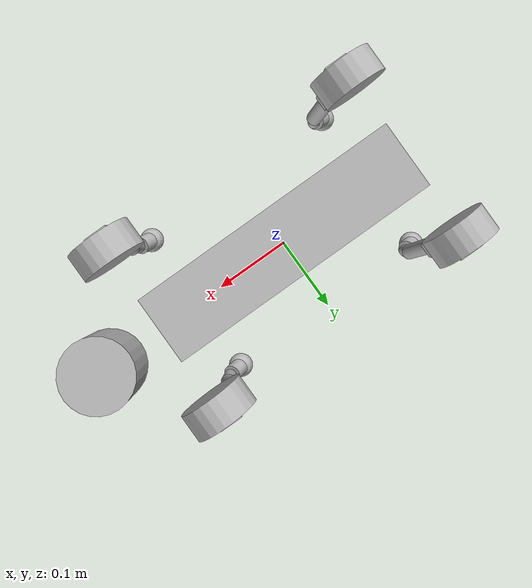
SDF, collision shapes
<sdf version='1.7'>
  <model name='go2_description'>
    <link name='base'>
      <inertial>
        <pose>0.021189 0 -0.005372 0 -0 0</pose>
        <mass>6.923</mass>
        <inertia>
          <ixx>0.0245024</ixx>
          <ixy>0.00012166</ixy>
          <ixz>0.0014957</ixz>
          <iyy>0.0982429</iyy>
          <iyz>-3.12e-05</iyz>
          <izz>0.107163</izz>
        </inertia>
      </inertial>
      <collision name='base_fixed_joint_lump__trunk_collision'>
        <pose>0 0 0 0 -0 0</pose>
        <geometry>
          <box>
            <size>0.3762 0.0935 0.114</size>
          </box>
        </geometry>
        <surface>
          <contact>
            <ode>
              <kp>1e+06</kp>
              <kd>1</kd>
            </ode>
          </contact>
          <friction>
            <ode>
              <mu>0.2</mu>
              <mu2>0.2</mu2>
            </ode>
          </friction>
        </surface>
      </collision>
      <collision name='base_fixed_joint_lump__Head_upper_collision_1'>
        <pose>0.285 0 0.01 0 -0 0</pose>
        <geometry>
          <cylinder>
            <length>0.09</length>
            <radius>0.05</radius>
          </cylinder>
        </geometry>
      </collision>
      <collision name='base_fixed_joint_lump__Head_lower_collision_2'>
        <pose>0.293 0 -0.06 0 -0 0</pose>
        <geometry>
          <sphere>
            <radius>0.047</radius>
          </sphere>
        </geometry>
      </collision>
      <visual name='base_visual'>
        <pose>0 0 0 0 -0 0</pose>
        <geometry>
          <box>
            <size>0.001 0.001 0.001</size>
          </box>
        </geometry>
      </visual>
      <visual name='base_fixed_joint_lump__trunk_visual_1'>
        <pose>0 0 0 0 -0 0</pose>
        <geometry>
          <mesh>
            <scale>1 1 1</scale>
            <uri>model://go2_description/meshes/base.dae</uri>
          </mesh>
        </geometry>
      </visual>
      <gravity>1</gravity>
      <sensor name='imu_sensor' type='imu'>
        <plugin name='imu_plugin' filename='libgazebo_ros_imu_sensor.so'>
          <ros>
            <namespace>/</namespace>
            <remapping>~/out:=imu</remapping>
          </ros>
          <initial_orientation_as_reference>0</initial_orientation_as_reference>
        </plugin>
        <always_on>1</always_on>
        <update_rate>100</update_rate>
        <visualize>1</visualize>
        <imu>
          <angular_velocity>
            <x>
              <noise type='gaussian'>
                <mean>0</mean>
                <stddev>0.0002</stddev>
                <bias_mean>7.5e-06</bias_mean>
                <bias_stddev>8e-07</bias_stddev>
              </noise>
            </x>
            <y>
              <noise type='gaussian'>
                <mean>0</mean>
                <stddev>0.0002</stddev>
                <bias_mean>7.5e-06</bias_mean>
                <bias_stddev>8e-07</bias_stddev>
              </noise>
            </y>
            <z>
              <noise type='gaussian'>
                <mean>0</mean>
                <stddev>0.0002</stddev>
                <bias_mean>7.5e-06</bias_mean>
                <bias_stddev>8e-07</bias_stddev>
              </noise>
            </z>
          </angular_velocity>
          <linear_acceleration>
            <x>
              <noise type='gaussian'>
                <mean>0</mean>
                <stddev>0.017</stddev>
                <bias_mean>0.1</bias_mean>
                <bias_stddev>0.001</bias_stddev>
              </noise>
            </x>
            <y>
              <noise type='gaussian'>
                <mean>0</mean>
                <stddev>0.017</stddev>
                <bias_mean>0.1</bias_mean>
                <bias_stddev>0.001</bias_stddev>
              </noise>
            </y>
            <z>
              <noise type='gaussian'>
                <mean>0</mean>
                <stddev>0.017</stddev>
                <bias_mean>0.1</bias_mean>
                <bias_stddev>0.001</bias_stddev>
              </noise>
            </z>
          </linear_acceleration>
        </imu>
        <pose>-0.02557 0 0.04232 0 -0 0</pose>
      </sensor>
    </link>
    <joint name='FL_hip_joint' type='revolute'>
      <pose relative_to='base'>0.1934 0.0465 0 0 -0 0</pose>
      <parent>base</parent>
      <child>FL_hip</child>
      <axis>
        <xyz>1 0 0</xyz>
        <limit>
          <lower>-1.0472</lower>
          <upper>1.0472</upper>
          <effort>23.7</effort>
          <velocity>30.1</velocity>
        </limit>
        <dynamics>
          <spring_reference>0</spring_reference>
          <spring_stiffness>0</spring_stiffness>
        </dynamics>
      </axis>
    </joint>
    <link name='FL_hip'>
      <pose relative_to='FL_hip_joint'>0 0 0 0 -0 0</pose>
      <inertial>
        <pose>-0.0054 0.00194 -0.000105 0 -0 0</pose>
        <mass>0.678</mass>
        <inertia>
          <ixx>0.00048</ixx>
          <ixy>-3.01e-06</ixy>
          <ixz>1.11e-06</ixz>
          <iyy>0.000884</iyy>
          <iyz>-1.42e-06</iyz>
          <izz>0.000596</izz>
        </inertia>
      </inertial>
      <collision name='FL_hip_collision'>
        <pose>0 0.08 0 1.5708 -0 0</pose>
        <geometry>
          <cylinder>
            <length>0.04</length>
            <radius>0.046</radius>
          </cylinder>
        </geometry>
        <surface>
          <contact>
            <ode/>
          </contact>
          <friction>
            <ode>
              <mu>0.2</mu>
              <mu2>0.2</mu2>
            </ode>
          </friction>
        </surface>
      </collision>
      <visual name='FL_hip_visual'>
        <pose>0 0 0 0 -0 0</pose>
        <geometry>
          <mesh>
            <scale>1 1 1</scale>
            <uri>model://go2_description/meshes/hip.dae</uri>
          </mesh>
        </geometry>
      </visual>
    </link>
    <joint name='FL_thigh_joint' type='revolute'>
      <pose relative_to='FL_hip'>0 0.0955 0 0 -0 0</pose>
      <parent>FL_hip</parent>
      <child>FL_thigh</child>
      <axis>
        <xyz>0 1 0</xyz>
        <limit>
          <lower>-1.5708</lower>
          <upper>3.4907</upper>
          <effort>23.7</effort>
          <velocity>30.1</velocity>
        </limit>
        <dynamics>
          <spring_reference>0</spring_reference>
          <spring_stiffness>0</spring_stiffness>
        </dynamics>
      </axis>
    </joint>
    <link name='FL_thigh'>
      <pose relative_to='FL_thigh_joint'>0 0 0 0 -0 0</pose>
      <inertial>
        <pose>-0.00374 -0.0223 -0.0327 0 -0 0</pose>
        <mass>1.152</mass>
        <inertia>
          <ixx>0.00584</ixx>
          <ixy>8.72e-05</ixy>
          <ixz>-0.000289</ixz>
          <iyy>0.0058</iyy>
          <iyz>0.000808</iyz>
          <izz>0.00103</izz>
        </inertia>
      </inertial>
      <collision name='FL_thigh_collision'>
        <pose>0 0 -0.1065 0 1.5708 0</pose>
        <geometry>
          <box>
            <size>0.213 0.0245 0.034</size>
          </box>
        </geometry>
        <surface>
          <contact>
            <ode>
              <kp>1e+06</kp>
              <kd>1</kd>
            </ode>
          </contact>
          <friction>
            <ode>
              <mu>0.2</mu>
              <mu2>0.2</mu2>
            </ode>
          </friction>
        </surface>
      </collision>
      <visual name='FL_thigh_visual'>
        <pose>0 0 0 0 -0 0</pose>
        <geometry>
          <mesh>
            <scale>1 1 1</scale>
            <uri>model://go2_description/meshes/thigh.dae</uri>
          </mesh>
        </geometry>
      </visual>
      <self_collide>1</self_collide>
    </link>
    <joint name='FL_calf_joint' type='revolute'>
      <pose relative_to='FL_thigh'>0 0 -0.213 0 -0 0</pose>
      <parent>FL_thigh</parent>
      <child>FL_calf</child>
      <axis>
        <xyz>0 1 0</xyz>
        <limit>
          <lower>-2.7227</lower>
          <upper>-0.83776</upper>
          <effort>45.43</effort>
          <velocity>15.7</velocity>
        </limit>
        <dynamics>
          <spring_reference>0</spring_reference>
          <spring_stiffness>0</spring_stiffness>
        </dynamics>
      </axis>
    </joint>
    <link name='FL_calf'>
      <pose relative_to='FL_calf_joint'>0 0 0 0 -0 0</pose>
      <inertial>
        <pose>0.00435 -0.000774 -0.135206 0 -0 0</pose>
        <mass>0.194</mass>
        <inertia>
          <ixx>0.00139458</ixx>
          <ixy>5.09654e-07</ixy>
          <ixz>1.47596e-07</ixz>
          <iyy>0.00141551</iyy>
          <iyz>1.1314e-05</iyz>
          <izz>4.34837e-05</izz>
        </inertia>
      </inertial>
      <collision name='FL_calf_collision'>
        <pose>0.008 0 -0.06 0 -0.21 0</pose>
        <geometry>
          <cylinder>
            <length>0.12</length>
            <radius>0.012</radius>
          </cylinder>
        </geometry>
        <surface>
          <contact>
            <ode/>
          </contact>
          <friction>
            <ode>
              <mu>0.2</mu>
              <mu2>0.2</mu2>
            </ode>
          </friction>
        </surface>
      </collision>
      <collision name='FL_calflower_collision_1'>
        <pose>0.02 0 -0.148 0 0.05 0</pose>
        <geometry>
          <cylinder>
            <length>0.065</length>
            <radius>0.011</radius>
          </cylinder>
        </geometry>
        <surface>
          <contact>
            <ode/>
          </contact>
          <friction>
            <ode>
              <mu>0.2</mu>
              <mu2>0.2</mu2>
            </ode>
          </friction>
        </surface>
      </collision>
      <collision name='FL_calflower1_collision_2'>
        <pose>0.008013 0 -0.18745 0 0.53 0</pose>
        <geometry>
          <cylinder>
            <length>0.03</length>
            <radius>0.0155</radius>
          </cylinder>
        </geometry>
        <surface>
          <contact>
            <ode/>
          </contact>
          <friction>
            <ode>
              <mu>0.2</mu>
              <mu2>0.2</mu2>
            </ode>
          </friction>
        </surface>
      </collision>
      <collision name='FL_calf_fixed_joint_lump__FL_foot_collision_3'>
        <pose>-0.002 0 -0.213 0 -0 0</pose>
        <geometry>
          <sphere>
            <radius>0.022</radius>
          </sphere>
        </geometry>
        <surface>
          <contact>
            <ode>
              <kp>1e+06</kp>
              <kd>1</kd>
            </ode>
          </contact>
          <friction>
            <ode>
              <mu>0.6</mu>
              <mu2>0.6</mu2>
            </ode>
          </friction>
        </surface>
      </collision>
      <visual name='FL_calf_visual'>
        <pose>0 0 0 0 -0 0</pose>
        <geometry>
          <mesh>
            <scale>1 1 1</scale>
            <uri>model://go2_description/meshes/calf.dae</uri>
          </mesh>
        </geometry>
      </visual>
      <visual name='FL_calf_fixed_joint_lump__FL_foot_visual_1'>
        <pose>0 0 -0.213 0 -0 0</pose>
        <geometry>
          <mesh>
            <scale>1 1 1</scale>
            <uri>model://go2_description/meshes/foot.dae</uri>
          </mesh>
        </geometry>
      </visual>
      <self_collide>1</self_collide>
      <sensor name='FL_foot_contact' type='contact'>
        <update_rate>100</update_rate>
        <plugin name='FLcontactPlugin' filename='libgazebo_ros_bumper.so'>
          <ros>
            <namespace>/</namespace>
            <node_name>FL_foot_contact_node</node_name>
            <remapping>~/contacts:=FL_foot_contact</remapping>
          </ros>
          <always_on>1</always_on>
        </plugin>
        <contact>
          <collision>FL_calf_fixed_joint_lump__FL_foot_collision_1</collision>
          <topic>__default_topic__</topic>
        </contact>
        <pose>0 0 -0.213 0 -0 0</pose>
      </sensor>
      <self_collide>1</self_collide>
    </link>
    <joint name='FR_hip_joint' type='revolute'>
      <pose relative_to='base'>0.1934 -0.0465 0 0 -0 0</pose>
      <parent>base</parent>
      <child>FR_hip</child>
      <axis>
        <xyz>1 0 0</xyz>
        <limit>
          <lower>-1.0472</lower>
          <upper>1.0472</upper>
          <effort>23.7</effort>
          <velocity>30.1</velocity>
        </limit>
        <dynamics>
          <spring_reference>0</spring_reference>
          <spring_stiffness>0</spring_stiffness>
        </dynamics>
      </axis>
    </joint>
    <link name='FR_hip'>
      <pose relative_to='FR_hip_joint'>0 0 0 0 -0 0</pose>
      <inertial>
        <pose>-0.0054 -0.00194 -0.000105 0 -0 0</pose>
        <mass>0.678</mass>
        <inertia>
          <ixx>0.00048</ixx>
          <ixy>3.01e-06</ixy>
          <ixz>1.11e-06</ixz>
          <iyy>0.000884</iyy>
          <iyz>1.42e-06</iyz>
          <izz>0.000596</izz>
        </inertia>
      </inertial>
      <collision name='FR_hip_collision'>
        <pose>0 -0.08 0 1.5708 -0 0</pose>
        <geometry>
          <cylinder>
            <length>0.04</length>
            <radius>0.046</radius>
          </cylinder>
        </geometry>
        <surface>
          <contact>
            <ode/>
          </contact>
          <friction>
            <ode>
              <mu>0.2</mu>
              <mu2>0.2</mu2>
            </ode>
          </friction>
        </surface>
      </collision>
      <visual name='FR_hip_visual'>
        <pose>0 0 0 3.1415 -0 0</pose>
        <geometry>
          <mesh>
            <scale>1 1 1</scale>
            <uri>model://go2_description/meshes/hip.dae</uri>
          </mesh>
        </geometry>
      </visual>
    </link>
    <joint name='FR_thigh_joint' type='revolute'>
      <pose relative_to='FR_hip'>0 -0.0955 0 0 -0 0</pose>
      <parent>FR_hip</parent>
      <child>FR_thigh</child>
      <axis>
        <xyz>0 1 0</xyz>
        <limit>
          <lower>-1.5708</lower>
          <upper>3.4907</upper>
          <effort>23.7</effort>
          <velocity>30.1</velocity>
        </limit>
        <dynamics>
          <spring_reference>0</spring_reference>
          <spring_stiffness>0</spring_stiffness>
        </dynamics>
      </axis>
    </joint>
    <link name='FR_thigh'>
      <pose relative_to='FR_thigh_joint'>0 0 0 0 -0 0</pose>
      <inertial>
        <pose>-0.00374 0.0223 -0.0327 0 -0 0</pose>
        <mass>1.152</mass>
        <inertia>
          <ixx>0.00584</ixx>
          <ixy>-8.72e-05</ixy>
          <ixz>-0.000289</ixz>
          <iyy>0.0058</iyy>
          <iyz>-0.000808</iyz>
          <izz>0.00103</izz>
        </inertia>
      </inertial>
      <collision name='FR_thigh_collision'>
        <pose>0 0 -0.1065 0 1.5708 0</pose>
        <geometry>
          <box>
            <size>0.213 0.0245 0.034</size>
          </box>
        </geometry>
        <surface>
          <contact>
            <ode>
              <kp>1e+06</kp>
              <kd>1</kd>
            </ode>
          </contact>
          <friction>
            <ode>
              <mu>0.2</mu>
              <mu2>0.2</mu2>
            </ode>
          </friction>
        </surface>
      </collision>
      <visual name='FR_thigh_visual'>
        <pose>0 0 0 0 -0 0</pose>
        <geometry>
          <mesh>
            <scale>1 1 1</scale>
            <uri>model://go2_description/meshes/thigh_mirror.dae</uri>
          </mesh>
        </geometry>
      </visual>
      <self_collide>1</self_collide>
    </link>
    <joint name='FR_calf_joint' type='revolute'>
      <pose relative_to='FR_thigh'>0 0 -0.213 0 -0 0</pose>
      <parent>FR_thigh</parent>
      <child>FR_calf</child>
      <axis>
        <xyz>0 1 0</xyz>
        <limit>
          <lower>-2.7227</lower>
          <upper>-0.83776</upper>
          <effort>45.43</effort>
          <velocity>15.7</velocity>
        </limit>
        <dynamics>
          <spring_reference>0</spring_reference>
          <spring_stiffness>0</spring_stiffness>
        </dynamics>
      </axis>
    </joint>
    <link name='FR_calf'>
      <pose relative_to='FR_calf_joint'>0 0 0 0 -0 0</pose>
      <inertial>
        <pose>0.00435 0.000774 -0.135206 0 -0 0</pose>
        <mass>0.194</mass>
        <inertia>
          <ixx>0.00139458</ixx>
          <ixy>-5.09654e-07</ixy>
          <ixz>1.47596e-07</ixz>
          <iyy>0.00141551</iyy>
          <iyz>-1.1314e-05</iyz>
          <izz>4.34837e-05</izz>
        </inertia>
      </inertial>
      <collision name='FR_calf_collision'>
        <pose>0.01 0 -0.06 0 -0.2 0</pose>
        <geometry>
          <cylinder>
            <length>0.12</length>
            <radius>0.013</radius>
          </cylinder>
        </geometry>
        <surface>
          <contact>
            <ode/>
          </contact>
          <friction>
            <ode>
              <mu>0.2</mu>
              <mu2>0.2</mu2>
            </ode>
          </friction>
        </surface>
      </collision>
      <collision name='FR_calflower_collision_1'>
        <pose>0.02 0 -0.148 0 0.05 0</pose>
        <geometry>
          <cylinder>
            <length>0.065</length>
            <radius>0.011</radius>
          </cylinder>
        </geometry>
        <surface>
          <contact>
            <ode/>
          </contact>
          <friction>
            <ode>
              <mu>0.2</mu>
              <mu2>0.2</mu2>
            </ode>
          </friction>
        </surface>
      </collision>
      <collision name='FR_calflower1_collision_2'>
        <pose>0.008013 0 -0.18745 0 0.53 0</pose>
        <geometry>
          <cylinder>
            <length>0.03</length>
            <radius>0.0155</radius>
          </cylinder>
        </geometry>
        <surface>
          <contact>
            <ode/>
          </contact>
          <friction>
            <ode>
              <mu>0.2</mu>
              <mu2>0.2</mu2>
            </ode>
          </friction>
        </surface>
      </collision>
      <collision name='FR_calf_fixed_joint_lump__FR_foot_collision_3'>
        <pose>-0.002 0 -0.213 0 -0 0</pose>
        <geometry>
          <sphere>
            <radius>0.022</radius>
          </sphere>
        </geometry>
        <surface>
          <contact>
            <ode>
              <kp>1e+06</kp>
              <kd>1</kd>
            </ode>
          </contact>
          <friction>
            <ode>
              <mu>0.6</mu>
              <mu2>0.6</mu2>
            </ode>
          </friction>
        </surface>
      </collision>
      <visual name='FR_calf_visual'>
        <pose>0 0 0 0 -0 0</pose>
        <geometry>
          <mesh>
            <scale>1 1 1</scale>
            <uri>model://go2_description/meshes/calf_mirror.dae</uri>
          </mesh>
        </geometry>
      </visual>
      <visual name='FR_calf_fixed_joint_lump__FR_foot_visual_1'>
        <pose>0 0 -0.213 0 -0 0</pose>
        <geometry>
          <mesh>
            <scale>1 1 1</scale>
            <uri>model://go2_description/meshes/foot.dae</uri>
          </mesh>
        </geometry>
      </visual>
      <self_collide>1</self_collide>
      <sensor name='FR_foot_contact' type='contact'>
        <update_rate>100</update_rate>
        <plugin name='FRcontactPlugin' filename='libgazebo_ros_bumper.so'>
          <ros>
            <namespace>/</namespace>
            <node_name>FR_foot_contact_node</node_name>
            <remapping>~/contacts:=FR_foot_contact</remapping>
          </ros>
          <always_on>1</always_on>
        </plugin>
        <contact>
          <collision>FR_calf_fixed_joint_lump__FR_foot_collision_1</collision>
          <topic>__default_topic__</topic>
        </contact>
        <pose>0 0 -0.213 0 -0 0</pose>
      </sensor>
      <self_collide>1</self_collide>
    </link>
    <joint name='RL_hip_joint' type='revolute'>
      <pose relative_to='base'>-0.1934 0.0465 0 0 -0 0</pose>
      <parent>base</parent>
      <child>RL_hip</child>
      <axis>
        <xyz>1 0 0</xyz>
        <limit>
          <lower>-1.0472</lower>
          <upper>1.0472</upper>
          <effort>23.7</effort>
          <velocity>30.1</velocity>
        </limit>
        <dynamics>
          <spring_reference>0</spring_reference>
          <spring_stiffness>0</spring_stiffness>
        </dynamics>
      </axis>
    </joint>
    <link name='RL_hip'>
      <pose relative_to='RL_hip_joint'>0 0 0 0 -0 0</pose>
      <inertial>
        <pose>0.0054 0.00194 -0.000105 0 -0 0</pose>
        <mass>0.678</mass>
        <inertia>
          <ixx>0.00048</ixx>
          <ixy>3.01e-06</ixy>
          <ixz>-1.11e-06</ixz>
          <iyy>0.000884</iyy>
          <iyz>-1.42e-06</iyz>
          <izz>0.000596</izz>
        </inertia>
      </inertial>
      <collision name='RL_hip_collision'>
        <pose>0 0.08 0 1.5708 -0 0</pose>
        <geometry>
          <cylinder>
            <length>0.04</length>
            <radius>0.046</radius>
          </cylinder>
        </geometry>
        <surface>
          <contact>
            <ode/>
          </contact>
          <friction>
            <ode>
              <mu>0.2</mu>
              <mu2>0.2</mu2>
            </ode>
          </friction>
        </surface>
      </collision>
      <visual name='RL_hip_visual'>
        <pose>0 0 0 3.14159 9.3e-05 3.14159</pose>
        <geometry>
          <mesh>
            <scale>1 1 1</scale>
            <uri>model://go2_description/meshes/hip.dae</uri>
          </mesh>
        </geometry>
      </visual>
    </link>
    <joint name='RL_thigh_joint' type='revolute'>
      <pose relative_to='RL_hip'>0 0.0955 0 0 -0 0</pose>
      <parent>RL_hip</parent>
      <child>RL_thigh</child>
      <axis>
        <xyz>0 1 0</xyz>
        <limit>
          <lower>-0.5236</lower>
          <upper>4.5379</upper>
          <effort>23.7</effort>
          <velocity>30.1</velocity>
        </limit>
        <dynamics>
          <spring_reference>0</spring_reference>
          <spring_stiffness>0</spring_stiffness>
        </dynamics>
      </axis>
    </joint>
    <link name='RL_thigh'>
      <pose relative_to='RL_thigh_joint'>0 0 0 0 -0 0</pose>
      <inertial>
        <pose>-0.00374 -0.0223 -0.0327 0 -0 0</pose>
        <mass>1.152</mass>
        <inertia>
          <ixx>0.00584</ixx>
          <ixy>8.72e-05</ixy>
          <ixz>-0.000289</ixz>
          <iyy>0.0058</iyy>
          <iyz>0.000808</iyz>
          <izz>0.00103</izz>
        </inertia>
      </inertial>
      <collision name='RL_thigh_collision'>
        <pose>0 0 -0.1065 0 1.5708 0</pose>
        <geometry>
          <box>
            <size>0.213 0.0245 0.034</size>
          </box>
        </geometry>
        <surface>
          <contact>
            <ode>
              <kp>1e+06</kp>
              <kd>1</kd>
            </ode>
          </contact>
          <friction>
            <ode>
              <mu>0.2</mu>
              <mu2>0.2</mu2>
            </ode>
          </friction>
        </surface>
      </collision>
      <visual name='RL_thigh_visual'>
        <pose>0 0 0 0 -0 0</pose>
        <geometry>
          <mesh>
            <scale>1 1 1</scale>
            <uri>model://go2_description/meshes/thigh.dae</uri>
          </mesh>
        </geometry>
      </visual>
      <self_collide>1</self_collide>
    </link>
    <joint name='RL_calf_joint' type='revolute'>
      <pose relative_to='RL_thigh'>0 0 -0.213 0 -0 0</pose>
      <parent>RL_thigh</parent>
      <child>RL_calf</child>
      <axis>
        <xyz>0 1 0</xyz>
        <limit>
          <lower>-2.7227</lower>
          <upper>-0.83776</upper>
          <effort>45.43</effort>
          <velocity>15.7</velocity>
        </limit>
        <dynamics>
          <spring_reference>0</spring_reference>
          <spring_stiffness>0</spring_stiffness>
        </dynamics>
      </axis>
    </joint>
    <link name='RL_calf'>
      <pose relative_to='RL_calf_joint'>0 0 0 0 -0 0</pose>
      <inertial>
        <pose>0.00435 -0.000774 -0.135206 0 -0 0</pose>
        <mass>0.194</mass>
        <inertia>
          <ixx>0.00139458</ixx>
          <ixy>5.09654e-07</ixy>
          <ixz>1.47596e-07</ixz>
          <iyy>0.00141551</iyy>
          <iyz>1.1314e-05</iyz>
          <izz>4.34837e-05</izz>
        </inertia>
      </inertial>
      <collision name='RL_calf_collision'>
        <pose>0.01 0 -0.06 0 -0.2 0</pose>
        <geometry>
          <cylinder>
            <length>0.12</length>
            <radius>0.013</radius>
          </cylinder>
        </geometry>
        <surface>
          <contact>
            <ode/>
          </contact>
          <friction>
            <ode>
              <mu>0.2</mu>
              <mu2>0.2</mu2>
            </ode>
          </friction>
        </surface>
      </collision>
      <collision name='RL_calflower_collision_1'>
        <pose>0.02 0 -0.148 0 0.05 0</pose>
        <geometry>
          <cylinder>
            <length>0.065</length>
            <radius>0.011</radius>
          </cylinder>
        </geometry>
        <surface>
          <contact>
            <ode/>
          </contact>
          <friction>
            <ode>
              <mu>0.2</mu>
              <mu2>0.2</mu2>
            </ode>
          </friction>
        </surface>
      </collision>
      <collision name='RL_calflower1_collision_2'>
        <pose>0.008013 0 -0.18745 0 0.53 0</pose>
        <geometry>
          <cylinder>
            <length>0.03</length>
            <radius>0.0155</radius>
          </cylinder>
        </geometry>
        <surface>
          <contact>
            <ode/>
          </contact>
          <friction>
            <ode>
              <mu>0.2</mu>
              <mu2>0.2</mu2>
            </ode>
          </friction>
        </surface>
      </collision>
      <collision name='RL_calf_fixed_joint_lump__RL_foot_collision_3'>
        <pose>-0.002 0 -0.213 0 -0 0</pose>
        <geometry>
          <sphere>
            <radius>0.022</radius>
          </sphere>
        </geometry>
        <surface>
          <contact>
            <ode>
              <kp>1e+06</kp>
              <kd>1</kd>
            </ode>
          </contact>
          <friction>
            <ode>
              <mu>0.6</mu>
              <mu2>0.6</mu2>
            </ode>
          </friction>
        </surface>
      </collision>
      <visual name='RL_calf_visual'>
        <pose>0 0 0 0 -0 0</pose>
        <geometry>
          <mesh>
            <scale>1 1 1</scale>
            <uri>model://go2_description/meshes/calf.dae</uri>
          </mesh>
        </geometry>
      </visual>
      <visual name='RL_calf_fixed_joint_lump__RL_foot_visual_1'>
        <pose>0 0 -0.213 0 -0 0</pose>
        <geometry>
          <mesh>
            <scale>1 1 1</scale>
            <uri>model://go2_description/meshes/foot.dae</uri>
          </mesh>
        </geometry>
      </visual>
      <self_collide>1</self_collide>
      <sensor name='RL_foot_contact' type='contact'>
        <update_rate>100</update_rate>
        <plugin name='RLcontactPlugin' filename='libgazebo_ros_bumper.so'>
          <ros>
            <namespace>/</namespace>
            <node_name>RL_foot_contact_node</node_name>
            <remapping>~/contacts:=RL_foot_contact</remapping>
          </ros>
          <always_on>1</always_on>
        </plugin>
        <contact>
          <collision>RL_calf_fixed_joint_lump__RL_foot_collision_1</collision>
          <topic>__default_topic__</topic>
        </contact>
        <pose>0 0 -0.213 0 -0 0</pose>
      </sensor>
      <self_collide>1</self_collide>
    </link>
    <joint name='RR_hip_joint' type='revolute'>
      <pose relative_to='base'>-0.1934 -0.0465 0 0 -0 0</pose>
      <parent>base</parent>
      <child>RR_hip</child>
      <axis>
        <xyz>1 0 0</xyz>
        <limit>
          <lower>-1.0472</lower>
          <upper>1.0472</upper>
          <effort>23.7</effort>
          <velocity>30.1</velocity>
        </limit>
        <dynamics>
          <spring_reference>0</spring_reference>
          <spring_stiffness>0</spring_stiffness>
        </dynamics>
      </axis>
    </joint>
    <link name='RR_hip'>
      <pose relative_to='RR_hip_joint'>0 0 0 0 -0 0</pose>
      <inertial>
        <pose>0.0054 -0.00194 -0.000105 0 -0 0</pose>
        <mass>0.678</mass>
        <inertia>
          <ixx>0.00048</ixx>
          <ixy>-3.01e-06</ixy>
          <ixz>-1.11e-06</ixz>
          <iyy>0.000884</iyy>
          <iyz>1.42e-06</iyz>
          <izz>0.000596</izz>
        </inertia>
      </inertial>
      <collision name='RR_hip_collision'>
        <pose>0 -0.08 0 1.5708 -0 0</pose>
        <geometry>
          <cylinder>
            <length>0.04</length>
            <radius>0.046</radius>
          </cylinder>
        </geometry>
        <surface>
          <contact>
            <ode/>
          </contact>
          <friction>
            <ode>
              <mu>0.2</mu>
              <mu2>0.2</mu2>
            </ode>
          </friction>
        </surface>
      </collision>
      <visual name='RR_hip_visual'>
        <pose>0 0 0 -9.3e-05 9.3e-05 3.14159</pose>
        <geometry>
          <mesh>
            <scale>1 1 1</scale>
            <uri>model://go2_description/meshes/hip.dae</uri>
          </mesh>
        </geometry>
      </visual>
    </link>
    <joint name='RR_thigh_joint' type='revolute'>
      <pose relative_to='RR_hip'>0 -0.0955 0 0 -0 0</pose>
      <parent>RR_hip</parent>
      <child>RR_thigh</child>
      <axis>
        <xyz>0 1 0</xyz>
        <limit>
          <lower>-0.5236</lower>
          <upper>4.5379</upper>
          <effort>23.7</effort>
          <velocity>30.1</velocity>
        </limit>
        <dynamics>
          <spring_reference>0</spring_reference>
          <spring_stiffness>0</spring_stiffness>
        </dynamics>
      </axis>
    </joint>
    <link name='RR_thigh'>
      <pose relative_to='RR_thigh_joint'>0 0 0 0 -0 0</pose>
      <inertial>
        <pose>-0.00374 0.0223 -0.0327 0 -0 0</pose>
        <mass>1.152</mass>
        <inertia>
          <ixx>0.00584</ixx>
          <ixy>-8.72e-05</ixy>
          <ixz>-0.000289</ixz>
          <iyy>0.0058</iyy>
          <iyz>-0.000808</iyz>
          <izz>0.00103</izz>
        </inertia>
      </inertial>
      <collision name='RR_thigh_collision'>
        <pose>0 0 -0.1065 0 1.5708 0</pose>
        <geometry>
          <box>
            <size>0.213 0.0245 0.034</size>
          </box>
        </geometry>
        <surface>
          <contact>
            <ode>
              <kp>1e+06</kp>
              <kd>1</kd>
            </ode>
          </contact>
          <friction>
            <ode>
              <mu>0.2</mu>
              <mu2>0.2</mu2>
            </ode>
          </friction>
        </surface>
      </collision>
      <visual name='RR_thigh_visual'>
        <pose>0 0 0 0 -0 0</pose>
        <geometry>
          <mesh>
            <scale>1 1 1</scale>
            <uri>model://go2_description/meshes/thigh_mirror.dae</uri>
          </mesh>
        </geometry>
      </visual>
      <self_collide>1</self_collide>
    </link>
    <joint name='RR_calf_joint' type='revolute'>
      <pose relative_to='RR_thigh'>0 0 -0.213 0 -0 0</pose>
      <parent>RR_thigh</parent>
      <child>RR_calf</child>
      <axis>
        <xyz>0 1 0</xyz>
        <limit>
          <lower>-2.7227</lower>
          <upper>-0.83776</upper>
          <effort>45.43</effort>
          <velocity>15.7</velocity>
        </limit>
        <dynamics>
          <spring_reference>0</spring_reference>
          <spring_stiffness>0</spring_stiffness>
        </dynamics>
      </axis>
    </joint>
    <link name='RR_calf'>
      <pose relative_to='RR_calf_joint'>0 0 0 0 -0 0</pose>
      <inertial>
        <pose>0.00435 0.000774 -0.135206 0 -0 0</pose>
        <mass>0.194</mass>
        <inertia>
          <ixx>0.00139458</ixx>
          <ixy>-5.09654e-07</ixy>
          <ixz>1.47596e-07</ixz>
          <iyy>0.00141551</iyy>
          <iyz>-1.1314e-05</iyz>
          <izz>4.34837e-05</izz>
        </inertia>
      </inertial>
      <collision name='RR_calf_collision'>
        <pose>0.01 0 -0.06 0 -0.2 0</pose>
        <geometry>
          <cylinder>
            <length>0.12</length>
            <radius>0.013</radius>
          </cylinder>
        </geometry>
        <surface>
          <contact>
            <ode/>
          </contact>
          <friction>
            <ode>
              <mu>0.2</mu>
              <mu2>0.2</mu2>
            </ode>
          </friction>
        </surface>
      </collision>
      <collision name='RR_calflower_collision_1'>
        <pose>0.02 0 -0.148 0 0.05 0</pose>
        <geometry>
          <cylinder>
            <length>0.065</length>
            <radius>0.011</radius>
          </cylinder>
        </geometry>
        <surface>
          <contact>
            <ode/>
          </contact>
          <friction>
            <ode>
              <mu>0.2</mu>
              <mu2>0.2</mu2>
            </ode>
          </friction>
        </surface>
      </collision>
      <collision name='RR_calflower1_collision_2'>
        <pose>0.008013 0 -0.18745 0 0.53 0</pose>
        <geometry>
          <cylinder>
            <length>0.03</length>
            <radius>0.0155</radius>
          </cylinder>
        </geometry>
        <surface>
          <contact>
            <ode/>
          </contact>
          <friction>
            <ode>
              <mu>0.2</mu>
              <mu2>0.2</mu2>
            </ode>
          </friction>
        </surface>
      </collision>
      <collision name='RR_calf_fixed_joint_lump__RR_foot_collision_3'>
        <pose>-0.002 0 -0.213 0 -0 0</pose>
        <geometry>
          <sphere>
            <radius>0.022</radius>
          </sphere>
        </geometry>
        <surface>
          <contact>
            <ode>
              <kp>1e+06</kp>
              <kd>1</kd>
            </ode>
          </contact>
          <friction>
            <ode>
              <mu>0.6</mu>
              <mu2>0.6</mu2>
            </ode>
          </friction>
        </surface>
      </collision>
      <visual name='RR_calf_visual'>
        <pose>0 0 0 0 -0 0</pose>
        <geometry>
          <mesh>
            <scale>1 1 1</scale>
            <uri>model://go2_description/meshes/calf_mirror.dae</uri>
          </mesh>
        </geometry>
      </visual>
      <visual name='RR_calf_fixed_joint_lump__RR_foot_visual_1'>
        <pose>0 0 -0.213 0 -0 0</pose>
        <geometry>
          <mesh>
            <scale>1 1 1</scale>
            <uri>model://go2_description/meshes/foot.dae</uri>
          </mesh>
        </geometry>
      </visual>
      <self_collide>1</self_collide>
      <sensor name='RR_foot_contact' type='contact'>
        <update_rate>100</update_rate>
        <plugin name='RRcontactPlugin' filename='libgazebo_ros_bumper.so'>
          <ros>
            <namespace>/</namespace>
            <node_name>RR_foot_contact_node</node_name>
            <remapping>~/contacts:=RR_foot_contact</remapping>
          </ros>
          <always_on>1</always_on>
        </plugin>
        <contact>
          <collision>RR_calf_fixed_joint_lump__RR_foot_collision_1</collision>
          <topic>__default_topic__</topic>
        </contact>
        <pose>0 0 -0.213 0 -0 0</pose>
      </sensor>
      <self_collide>1</self_collide>
    </link>
    <static>0</static>
    <plugin name='gazebo_ros2_control' filename='libgazebo_ros2_control.so'>
      <parameters>/home/kemove/quadruped_robot/rl_sar/install/share/go2_description/config/robot_control_ros2.yaml</parameters>
    </plugin>
  </model>
</sdf>
